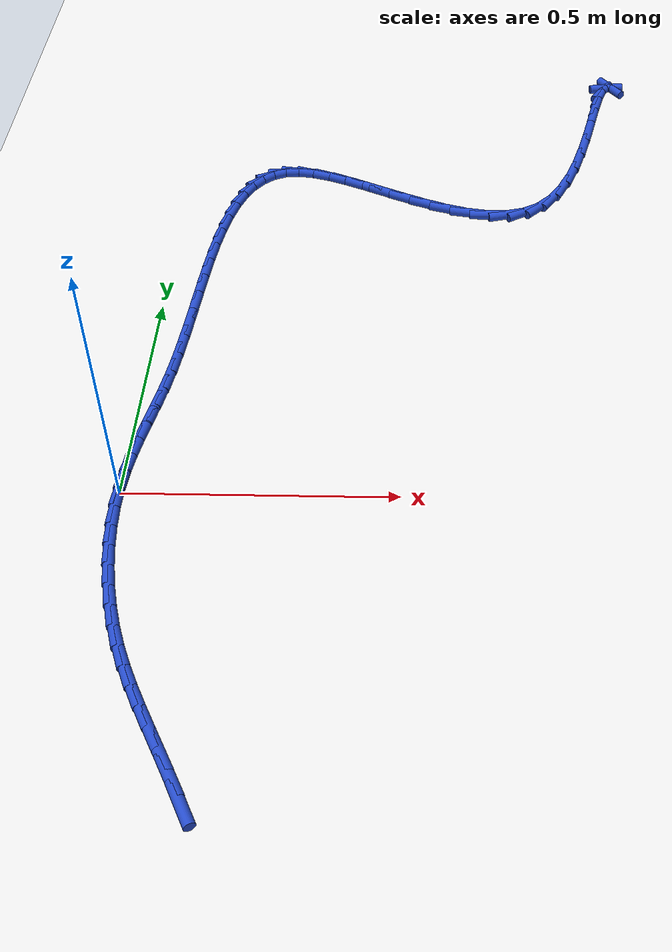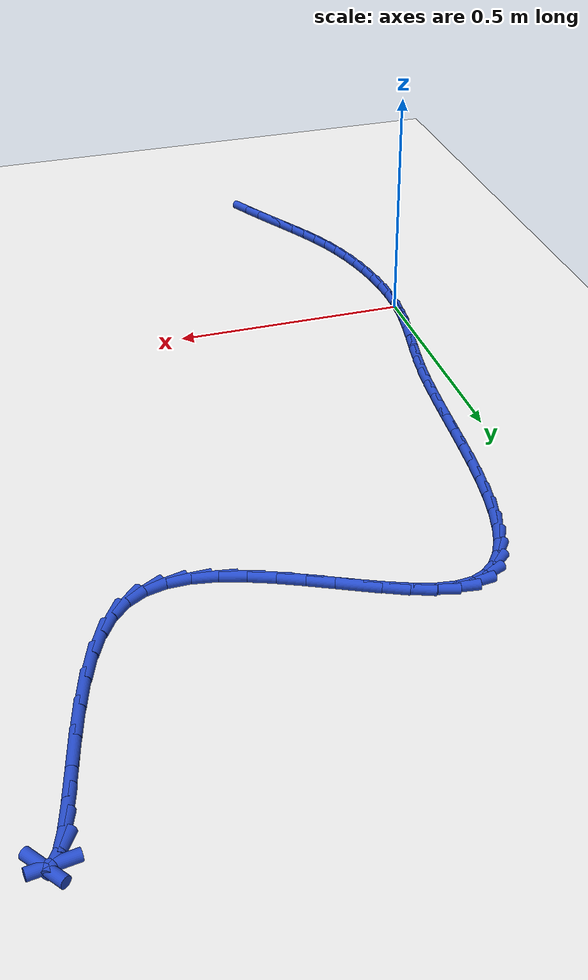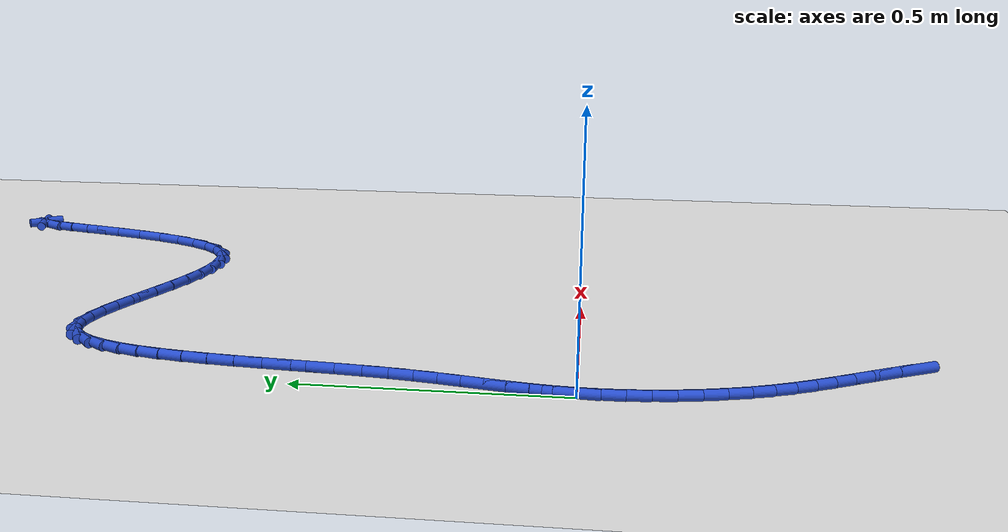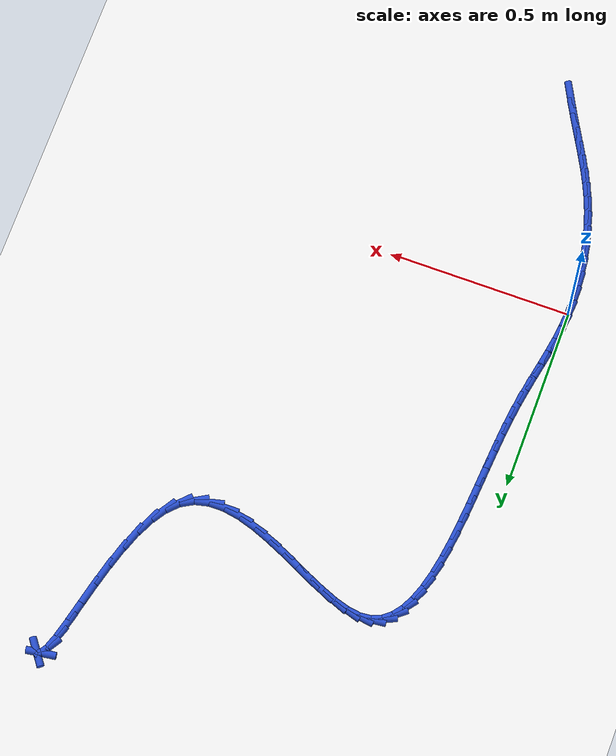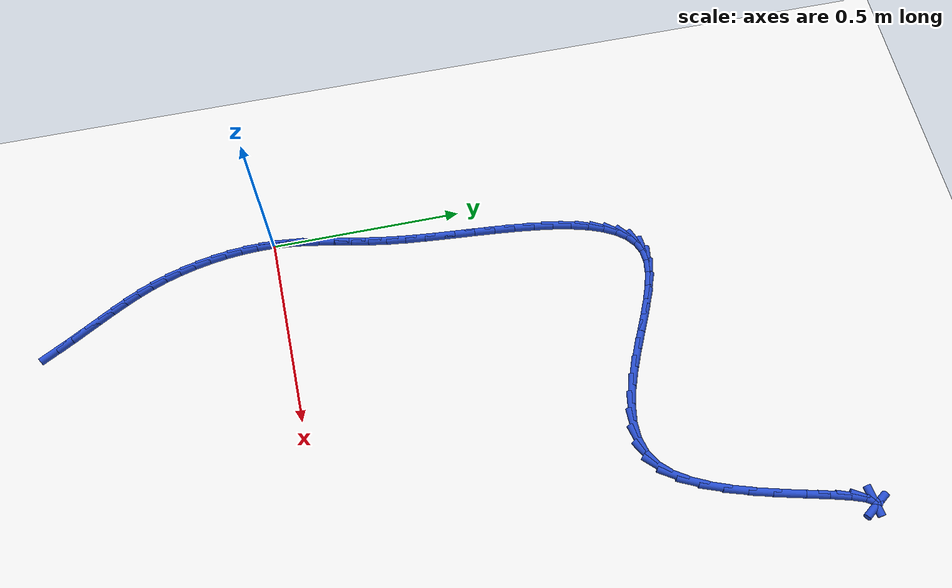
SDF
<sdf version="1.6">
 <world name="default">
  <model name="ground_plane">
   <static>1</static>
   <link name="link">
    <collision name="collision">
     <geometry><plane><normal>0 0 1</normal><size>100 100</size></plane></geometry>
     <surface><friction><ode><mu>100</mu><mu2>50</mu2></ode></friction></surface>
    </collision>
    <visual name="visual">
     <cast_shadows>0</cast_shadows>
     <geometry><plane><normal>0 0 1</normal><size>100 100</size></plane></geometry>
     <material>
      <script><uri>file://media/materials/scripts/gazebo.material</uri><name>Gazebo/WhiteGlow</name></script>
     </material>
    </visual>
   </link>
  </model>
  <model name="line">
   <link name="link_0">
    <pose>-3.469446951953614e-17 -1.3877787807814457e-17 0.01 0 1.57 1.4951217058976023</pose>
    <collision name="collision">
     <geometry><cylinder><radius>0.01</radius><length>0.08</length></cylinder></geometry>
    </collision>
    <visual name="visual">
     <material>
      <script><name>Gazebo/Blue</name><uri>file://media/materials/scripts/gazebo.material</uri></script>
     </material>
     <geometry><cylinder><radius>0.01</radius><length>0.08</length></cylinder></geometry>
    </visual>
   </link>
   <link name="link_1">
    <pose>0.003068000607721073 0.04046458219282482 0.01 0 1.57 1.4431502194532113</pose>
    <collision name="collision">
     <geometry><cylinder><radius>0.01</radius><length>0.08</length></cylinder></geometry>
    </collision>
    <visual name="visual">
     <material>
      <script><name>Gazebo/Blue</name><uri>file://media/materials/scripts/gazebo.material</uri></script>
     </material>
     <geometry><cylinder><radius>0.01</radius><length>0.08</length></cylinder></geometry>
    </visual>
   </link>
   <link name="link_2">
    <pose>0.008171197587003923 0.080226472073507 0.01 0 1.57 1.4053528337721921</pose>
    <collision name="collision">
     <geometry><cylinder><radius>0.01</radius><length>0.08</length></cylinder></geometry>
    </collision>
    <visual name="visual">
     <material>
      <script><name>Gazebo/Blue</name><uri>file://media/materials/scripts/gazebo.material</uri></script>
     </material>
     <geometry><cylinder><radius>0.01</radius><length>0.08</length></cylinder></geometry>
    </visual>
   </link>
   <link name="link_3">
    <pose>0.014789591132992141 0.1198647662148879 0.01 0 1.57 1.383136226669687</pose>
    <collision name="collision">
     <geometry><cylinder><radius>0.01</radius><length>0.08</length></cylinder></geometry>
    </collision>
    <visual name="visual">
     <material>
      <script><name>Gazebo/Blue</name><uri>file://media/materials/scripts/gazebo.material</uri></script>
     </material>
     <geometry><cylinder><radius>0.01</radius><length>0.08</length></cylinder></geometry>
    </visual>
   </link>
   <link name="link_4">
    <pose>0.022403181440829364 0.15995856118980886 0.01 0 1.57 1.3766031780159855</pose>
    <collision name="collision">
     <geometry><cylinder><radius>0.01</radius><length>0.08</length></cylinder></geometry>
    </collision>
    <visual name="visual">
     <material>
      <script><name>Gazebo/Blue</name><uri>file://media/materials/scripts/gazebo.material</uri></script>
     </material>
     <geometry><cylinder><radius>0.01</radius><length>0.08</length></cylinder></geometry>
    </visual>
   </link>
   <link name="link_5">
    <pose>0.030491968705659216 0.20108695357111123 0.01 0 1.57 1.384773958833869</pose>
    <collision name="collision">
     <geometry><cylinder><radius>0.01</radius><length>0.08</length></cylinder></geometry>
    </collision>
    <visual name="visual">
     <material>
      <script><name>Gazebo/Blue</name><uri>file://media/materials/scripts/gazebo.material</uri></script>
     </material>
     <geometry><cylinder><radius>0.01</radius><length>0.08</length></cylinder></geometry>
    </visual>
   </link>
   <link name="link_6">
    <pose>0.038535953122625345 0.24382903993163638 0.01 0 1.57 1.4058634156009262</pose>
    <collision name="collision">
     <geometry><cylinder><radius>0.01</radius><length>0.08</length></cylinder></geometry>
    </collision>
    <visual name="visual">
     <material>
      <script><name>Gazebo/Blue</name><uri>file://media/materials/scripts/gazebo.material</uri></script>
     </material>
     <geometry><cylinder><radius>0.01</radius><length>0.08</length></cylinder></geometry>
    </visual>
   </link>
   <link name="link_7">
    <pose>0.04601513488687137 0.2887639168442257 0.01 0 1.57 1.4368984109076222</pose>
    <collision name="collision">
     <geometry><cylinder><radius>0.01</radius><length>0.08</length></cylinder></geometry>
    </collision>
    <visual name="visual">
     <material>
      <script><name>Gazebo/Blue</name><uri>file://media/materials/scripts/gazebo.material</uri></script>
     </material>
     <geometry><cylinder><radius>0.01</radius><length>0.08</length></cylinder></geometry>
    </visual>
   </link>
   <link name="link_8">
    <pose>0.05243608313809826 0.33643104656350636 0.01 0 1.57 1.4652924382436097</pose>
    <collision name="collision">
     <geometry><cylinder><radius>0.01</radius><length>0.08</length></cylinder></geometry>
    </collision>
    <visual name="visual">
     <material>
      <script><name>Gazebo/Blue</name><uri>file://media/materials/scripts/gazebo.material</uri></script>
     </material>
     <geometry><cylinder><radius>0.01</radius><length>0.08</length></cylinder></geometry>
    </visual>
   </link>
   <link name="link_9">
    <pose>0.05775873869656523 0.386693572515644 0.01 0 1.57 1.4835040604561711</pose>
    <collision name="collision">
     <geometry><cylinder><radius>0.01</radius><length>0.08</length></cylinder></geometry>
    </collision>
    <visual name="visual">
     <material>
      <script><name>Gazebo/Blue</name><uri>file://media/materials/scripts/gazebo.material</uri></script>
     </material>
     <geometry><cylinder><radius>0.01</radius><length>0.08</length></cylinder></geometry>
    </visual>
   </link>
   <link name="link_10">
    <pose>0.06232300132376176 0.4388478330152007 0.01 0 1.57 1.4929879269007387</pose>
    <collision name="collision">
     <geometry><cylinder><radius>0.01</radius><length>0.08</length></cylinder></geometry>
    </collision>
    <visual name="visual">
     <material>
      <script><name>Gazebo/Blue</name><uri>file://media/materials/scripts/gazebo.material</uri></script>
     </material>
     <geometry><cylinder><radius>0.01</radius><length>0.08</length></cylinder></geometry>
    </visual>
   </link>
   <link name="link_11">
    <pose>0.06648051340331826 0.49217264927809773 0.01 0 1.57 1.494654360328666</pose>
    <collision name="collision">
     <geometry><cylinder><radius>0.01</radius><length>0.08</length></cylinder></geometry>
    </collision>
    <visual name="visual">
     <material>
      <script><name>Gazebo/Blue</name><uri>file://media/materials/scripts/gazebo.material</uri></script>
     </material>
     <geometry><cylinder><radius>0.01</radius><length>0.08</length></cylinder></geometry>
    </visual>
   </link>
   <link name="link_12">
    <pose>0.07058291731886508 0.545946842520256 0.01 0 1.57 1.4887613804122766</pose>
    <collision name="collision">
     <geometry><cylinder><radius>0.01</radius><length>0.08</length></cylinder></geometry>
    </collision>
    <visual name="visual">
     <material>
      <script><name>Gazebo/Blue</name><uri>file://media/materials/scripts/gazebo.material</uri></script>
     </material>
     <geometry><cylinder><radius>0.01</radius><length>0.08</length></cylinder></geometry>
    </visual>
   </link>
   <link name="link_13">
    <pose>0.0749818554540327 0.5994492339575973 0.01 0 1.57 1.4749724110111586</pose>
    <collision name="collision">
     <geometry><cylinder><radius>0.01</radius><length>0.08</length></cylinder></geometry>
    </collision>
    <visual name="visual">
     <material>
      <script><name>Gazebo/Blue</name><uri>file://media/materials/scripts/gazebo.material</uri></script>
     </material>
     <geometry><cylinder><radius>0.01</radius><length>0.08</length></cylinder></geometry>
    </visual>
   </link>
   <link name="link_14">
    <pose>0.08002897019245148 0.6519586448060424 0.01 0 1.57 1.4523086974725221</pose>
    <collision name="collision">
     <geometry><cylinder><radius>0.01</radius><length>0.08</length></cylinder></geometry>
    </collision>
    <visual name="visual">
     <material>
      <script><name>Gazebo/Blue</name><uri>file://media/materials/scripts/gazebo.material</uri></script>
     </material>
     <geometry><cylinder><radius>0.01</radius><length>0.08</length></cylinder></geometry>
    </visual>
   </link>
   <link name="link_15">
    <pose>0.08607590391775174 0.7027538962815124 0.01 0 1.57 1.4189872636883354</pose>
    <collision name="collision">
     <geometry><cylinder><radius>0.01</radius><length>0.08</length></cylinder></geometry>
    </collision>
    <visual name="visual">
     <material>
      <script><name>Gazebo/Blue</name><uri>file://media/materials/scripts/gazebo.material</uri></script>
     </material>
     <geometry><cylinder><radius>0.01</radius><length>0.08</length></cylinder></geometry>
    </visual>
   </link>
   <link name="link_16">
    <pose>0.09347429901356401 0.7511138095999289 0.01 0 1.57 1.3721073862547013</pose>
    <collision name="collision">
     <geometry><cylinder><radius>0.01</radius><length>0.08</length></cylinder></geometry>
    </collision>
    <visual name="visual">
     <material>
      <script><name>Gazebo/Blue</name><uri>file://media/materials/scripts/gazebo.material</uri></script>
     </material>
     <geometry><cylinder><radius>0.01</radius><length>0.08</length></cylinder></geometry>
    </visual>
   </link>
   <link name="link_17">
    <pose>0.10257579786351859 0.7963172059772129 0.01 0 1.57 1.3071227031823986</pose>
    <collision name="collision">
     <geometry><cylinder><radius>0.01</radius><length>0.08</length></cylinder></geometry>
    </collision>
    <visual name="visual">
     <material>
      <script><name>Gazebo/Blue</name><uri>file://media/materials/scripts/gazebo.material</uri></script>
     </material>
     <geometry><cylinder><radius>0.01</radius><length>0.08</length></cylinder></geometry>
    </visual>
   </link>
   <link name="link_18">
    <pose>0.1137320428512459 0.8376429066292856 0.01 0 1.57 1.2170462354324274</pose>
    <collision name="collision">
     <geometry><cylinder><radius>0.01</radius><length>0.08</length></cylinder></geometry>
    </collision>
    <visual name="visual">
     <material>
      <script><name>Gazebo/Blue</name><uri>file://media/materials/scripts/gazebo.material</uri></script>
     </material>
     <geometry><cylinder><radius>0.01</radius><length>0.08</length></cylinder></geometry>
    </visual>
   </link>
   <link name="link_19">
    <pose>0.12729467636037634 0.874369732772068 0.01 0 1.57 1.0915491959882178</pose>
    <collision name="collision">
     <geometry><cylinder><radius>0.01</radius><length>0.08</length></cylinder></geometry>
    </collision>
    <visual name="visual">
     <material>
      <script><name>Gazebo/Blue</name><uri>file://media/materials/scripts/gazebo.material</uri></script>
     </material>
     <geometry><cylinder><radius>0.01</radius><length>0.08</length></cylinder></geometry>
    </visual>
   </link>
   <link name="link_20">
    <pose>0.14361534077454038 0.9057765056214819 0.01 0 1.57 0.917125326420871</pose>
    <collision name="collision">
     <geometry><cylinder><radius>0.01</radius><length>0.08</length></cylinder></geometry>
    </collision>
    <visual name="visual">
     <material>
      <script><name>Gazebo/Blue</name><uri>file://media/materials/scripts/gazebo.material</uri></script>
     </material>
     <geometry><cylinder><radius>0.01</radius><length>0.08</length></cylinder></geometry>
    </visual>
   </link>
   <link name="link_21">
    <pose>0.16304567847736823 0.9311420463934474 0.01 0 1.57 0.6824128942961104</pose>
    <collision name="collision">
     <geometry><cylinder><radius>0.01</radius><length>0.08</length></cylinder></geometry>
    </collision>
    <visual name="visual">
     <material>
      <script><name>Gazebo/Blue</name><uri>file://media/materials/scripts/gazebo.material</uri></script>
     </material>
     <geometry><cylinder><radius>0.01</radius><length>0.08</length></cylinder></geometry>
    </visual>
   </link>
   <link name="link_22">
    <pose>0.1859373318524905 0.9497451763038873 0.01 0 1.57 0.39455558384039596</pose>
    <collision name="collision">
     <geometry><cylinder><radius>0.01</radius><length>0.08</length></cylinder></geometry>
    </collision>
    <visual name="visual">
     <material>
      <script><name>Gazebo/Blue</name><uri>file://media/materials/scripts/gazebo.material</uri></script>
     </material>
     <geometry><cylinder><radius>0.01</radius><length>0.08</length></cylinder></geometry>
    </visual>
   </link>
   <link name="link_23">
    <pose>0.2126419432835375 0.9608647165687213 0.01 0 1.57 0.09520336615453237</pose>
    <collision name="collision">
     <geometry><cylinder><radius>0.01</radius><length>0.08</length></cylinder></geometry>
    </collision>
    <visual name="visual">
     <material>
      <script><name>Gazebo/Blue</name><uri>file://media/materials/scripts/gazebo.material</uri></script>
     </material>
     <geometry><cylinder><radius>0.01</radius><length>0.08</length></cylinder></geometry>
    </visual>
   </link>
   <link name="link_24">
    <pose>0.24349739040757096 0.9638111662760462 0.01 0 1.57 -0.14008450777462744</pose>
    <collision name="collision">
     <geometry><cylinder><radius>0.01</radius><length>0.08</length></cylinder></geometry>
    </collision>
    <visual name="visual">
     <material>
      <script><name>Gazebo/Blue</name><uri>file://media/materials/scripts/gazebo.material</uri></script>
     </material>
     <geometry><cylinder><radius>0.01</radius><length>0.08</length></cylinder></geometry>
    </visual>
   </link>
   <link name="link_25">
    <pose>0.27840999056388943 0.9588882074890405 0.01 0 1.57 -0.2869290451556819</pose>
    <collision name="collision">
     <geometry><cylinder><radius>0.01</radius><length>0.08</length></cylinder></geometry>
    </collision>
    <visual name="visual">
     <material>
      <script><name>Gazebo/Blue</name><uri>file://media/materials/scripts/gazebo.material</uri></script>
     </material>
     <geometry><cylinder><radius>0.01</radius><length>0.08</length></cylinder></geometry>
    </visual>
   </link>
   <link name="link_26">
    <pose>0.3167789259476304 0.9475666314647947 0.01 0 1.57 -0.37430686810902347</pose>
    <collision name="collision">
     <geometry><cylinder><radius>0.01</radius><length>0.08</length></cylinder></geometry>
    </collision>
    <visual name="visual">
     <material>
      <script><name>Gazebo/Blue</name><uri>file://media/materials/scripts/gazebo.material</uri></script>
     </material>
     <geometry><cylinder><radius>0.01</radius><length>0.08</length></cylinder></geometry>
    </visual>
   </link>
   <link name="link_27">
    <pose>0.35797437554632305 0.9313839767774466 0.01 0 1.57 -0.4224653980475397</pose>
    <collision name="collision">
     <geometry><cylinder><radius>0.01</radius><length>0.08</length></cylinder></geometry>
    </collision>
    <visual name="visual">
     <material>
      <script><name>Gazebo/Blue</name><uri>file://media/materials/scripts/gazebo.material</uri></script>
     </material>
     <geometry><cylinder><radius>0.01</radius><length>0.08</length></cylinder></geometry>
    </visual>
   </link>
   <link name="link_28">
    <pose>0.4013665183474964 0.9118777820011319 0.01 0 1.57 -0.4422982987916948</pose>
    <collision name="collision">
     <geometry><cylinder><radius>0.01</radius><length>0.08</length></cylinder></geometry>
    </collision>
    <visual name="visual">
     <material>
      <script><name>Gazebo/Blue</name><uri>file://media/materials/scripts/gazebo.material</uri></script>
     </material>
     <geometry><cylinder><radius>0.01</radius><length>0.08</length></cylinder></geometry>
    </visual>
   </link>
   <link name="link_29">
    <pose>0.4463255333386797 0.8905855857099881 0.01 0 1.57 -0.43881658580921684</pose>
    <collision name="collision">
     <geometry><cylinder><radius>0.01</radius><length>0.08</length></cylinder></geometry>
    </collision>
    <visual name="visual">
     <material>
      <script><name>Gazebo/Blue</name><uri>file://media/materials/scripts/gazebo.material</uri></script>
     </material>
     <geometry><cylinder><radius>0.01</radius><length>0.08</length></cylinder></geometry>
    </visual>
   </link>
   <link name="link_30">
    <pose>0.4922215995074023 0.8690449264781515 0.01 0 1.57 -0.4130940439720531</pose>
    <collision name="collision">
     <geometry><cylinder><radius>0.01</radius><length>0.08</length></cylinder></geometry>
    </collision>
    <visual name="visual">
     <material>
      <script><name>Gazebo/Blue</name><uri>file://media/materials/scripts/gazebo.material</uri></script>
     </material>
     <geometry><cylinder><radius>0.01</radius><length>0.08</length></cylinder></geometry>
    </visual>
   </link>
   <link name="link_31">
    <pose>0.5384248958411935 0.8487933428797588 0.01 0 1.57 -0.3629622806388114</pose>
    <collision name="collision">
     <geometry><cylinder><radius>0.01</radius><length>0.08</length></cylinder></geometry>
    </collision>
    <visual name="visual">
     <material>
      <script><name>Gazebo/Blue</name><uri>file://media/materials/scripts/gazebo.material</uri></script>
     </material>
     <geometry><cylinder><radius>0.01</radius><length>0.08</length></cylinder></geometry>
    </visual>
   </link>
   <link name="link_32">
    <pose>0.5843056013275824 0.8313683734889473 0.01 0 1.57 -0.28290631552987117</pose>
    <collision name="collision">
     <geometry><cylinder><radius>0.01</radius><length>0.08</length></cylinder></geometry>
    </collision>
    <visual name="visual">
     <material>
      <script><name>Gazebo/Blue</name><uri>file://media/materials/scripts/gazebo.material</uri></script>
     </material>
     <geometry><cylinder><radius>0.01</radius><length>0.08</length></cylinder></geometry>
    </visual>
   </link>
   <link name="link_33">
    <pose>0.6292338949540979 0.8183075568798531 0.01 0 1.57 -0.16368439228024606</pose>
    <collision name="collision">
     <geometry><cylinder><radius>0.01</radius><length>0.08</length></cylinder></geometry>
    </collision>
    <visual name="visual">
     <material>
      <script><name>Gazebo/Blue</name><uri>file://media/materials/scripts/gazebo.material</uri></script>
     </material>
     <geometry><cylinder><radius>0.01</radius><length>0.08</length></cylinder></geometry>
    </visual>
   </link>
   <link name="link_34">
    <pose>0.6725799557082695 0.8111484316266135 0.01 0 1.57 0.006809459342512383</pose>
    <collision name="collision">
     <geometry><cylinder><radius>0.01</radius><length>0.08</length></cylinder></geometry>
    </collision>
    <visual name="visual">
     <material>
      <script><name>Gazebo/Blue</name><uri>file://media/materials/scripts/gazebo.material</uri></script>
     </material>
     <geometry><cylinder><radius>0.01</radius><length>0.08</length></cylinder></geometry>
    </visual>
   </link>
   <link name="link_35">
    <pose>0.7137139625776263 0.8114285363033651 0.01 0 1.57 0.23719285076958105</pose>
    <collision name="collision">
     <geometry><cylinder><radius>0.01</radius><length>0.08</length></cylinder></geometry>
    </collision>
    <visual name="visual">
     <material>
      <script><name>Gazebo/Blue</name><uri>file://media/materials/scripts/gazebo.material</uri></script>
     </material>
     <geometry><cylinder><radius>0.01</radius><length>0.08</length></cylinder></geometry>
    </visual>
   </link>
   <link name="link_36">
    <pose>0.7520060945496978 0.8206854094842446 0.01 0 1.57 0.516409422108368</pose>
    <collision name="collision">
     <geometry><cylinder><radius>0.01</radius><length>0.08</length></cylinder></geometry>
    </collision>
    <visual name="visual">
     <material>
      <script><name>Gazebo/Blue</name><uri>file://media/materials/scripts/gazebo.material</uri></script>
     </material>
     <geometry><cylinder><radius>0.01</radius><length>0.08</length></cylinder></geometry>
    </visual>
   </link>
   <link name="link_37">
    <pose>0.7868265306120127 0.8404565897433887 0.01 0 1.57 0.7985524834558605</pose>
    <collision name="collision">
     <geometry><cylinder><radius>0.01</radius><length>0.08</length></cylinder></geometry>
    </collision>
    <visual name="visual">
     <material>
      <script><name>Gazebo/Blue</name><uri>file://media/materials/scripts/gazebo.material</uri></script>
     </material>
     <geometry><cylinder><radius>0.01</radius><length>0.08</length></cylinder></geometry>
    </visual>
   </link>
   <link name="link_38">
    <pose>0.8176031347495035 0.8720537253443836 0.01 0 1.57 1.0059609943322232</pose>
    <collision name="collision">
     <geometry><cylinder><radius>0.01</radius><length>0.08</length></cylinder></geometry>
    </collision>
    <visual name="visual">
     <material>
      <script><name>Gazebo/Blue</name><uri>file://media/materials/scripts/gazebo.material</uri></script>
     </material>
     <geometry><cylinder><radius>0.01</radius><length>0.08</length></cylinder></geometry>
    </visual>
   </link>
   <link name="link_39">
    <pose>0.8443922377049559 0.9143274338236977 0.01 0 1.57 1.1378254809079609</pose>
    <collision name="collision">
     <geometry><cylinder><radius>0.01</radius><length>0.08</length></cylinder></geometry>
    </collision>
    <visual name="visual">
     <material>
      <script><name>Gazebo/Blue</name><uri>file://media/materials/scripts/gazebo.material</uri></script>
     </material>
     <geometry><cylinder><radius>0.01</radius><length>0.08</length></cylinder></geometry>
    </visual>
   </link>
   <link name="link_40">
    <pose>0.8676364884619845 0.9646155382075973 0.01 0 1.57 1.2232509794631061</pose>
    <collision name="collision">
     <geometry><cylinder><radius>0.01</radius><length>0.08</length></cylinder></geometry>
    </collision>
    <visual name="visual">
     <material>
      <script><name>Gazebo/Blue</name><uri>file://media/materials/scripts/gazebo.material</uri></script>
     </material>
     <geometry><cylinder><radius>0.01</radius><length>0.08</length></cylinder></geometry>
    </visual>
   </link>
   <link name="link_41">
    <pose>0.8877841667137211 1.0202338120679193 0.01 0 1.57 1.279022746159319</pose>
    <collision name="collision">
     <geometry><cylinder><radius>0.01</radius><length>0.08</length></cylinder></geometry>
    </collision>
    <visual name="visual">
     <material>
      <script><name>Gazebo/Blue</name><uri>file://media/materials/scripts/gazebo.material</uri></script>
     </material>
     <geometry><cylinder><radius>0.01</radius><length>0.08</length></cylinder></geometry>
    </visual>
   </link>
   <link name="link_42">
    <pose>0.9052835521532973 1.0784980289764992 0.01 0 1.57 1.3138459610086088</pose>
    <collision name="collision">
     <geometry><cylinder><radius>0.01</radius><length>0.08</length></cylinder></geometry>
    </collision>
    <visual name="visual">
     <material>
      <script><name>Gazebo/Blue</name><uri>file://media/materials/scripts/gazebo.material</uri></script>
     </material>
     <geometry><cylinder><radius>0.01</radius><length>0.08</length></cylinder></geometry>
    </visual>
   </link>
   <link name="link_43">
    <pose>0.9205829244738453 1.1367239625051744 0.01 0 1.57 1.3313909660755805</pose>
    <collision name="collision">
     <geometry><cylinder><radius>0.01</radius><length>0.08</length></cylinder></geometry>
    </collision>
    <visual name="visual">
     <material>
      <script><name>Gazebo/Blue</name><uri>file://media/materials/scripts/gazebo.material</uri></script>
     </material>
     <geometry><cylinder><radius>0.01</radius><length>0.08</length></cylinder></geometry>
    </visual>
   </link>
   <link name="link_44">
    <pose>0.9341305633684974 1.1922273862257815 0.01 0 1.57 1.3310847076183943</pose>
    <collision name="collision">
     <geometry><cylinder><radius>0.01</radius><length>0.08</length></cylinder></geometry>
    </collision>
    <visual name="visual">
     <material>
      <script><name>Gazebo/Blue</name><uri>file://media/materials/scripts/gazebo.material</uri></script>
     </material>
     <geometry><cylinder><radius>0.01</radius><length>0.08</length></cylinder></geometry>
    </visual>
   </link>
   <link name="link_45">
    <pose>0.9463747485303853 1.2423240737101562 0.01 0 1.57 1.3060315951407147</pose>
    <collision name="collision">
     <geometry><cylinder><radius>0.01</radius><length>0.08</length></cylinder></geometry>
    </collision>
    <visual name="visual">
     <material>
      <script><name>Gazebo/Blue</name><uri>file://media/materials/scripts/gazebo.material</uri></script>
     </material>
     <geometry><cylinder><radius>0.01</radius><length>0.08</length></cylinder></geometry>
    </visual>
   </link>
   <link name="link_46">
    <pose>0.9577637596526409 1.2843297985301356 0.01 0 1.57 1.2326552124681993</pose>
    <collision name="collision">
     <geometry><cylinder><radius>0.01</radius><length>0.08</length></cylinder></geometry>
    </collision>
    <visual name="visual">
     <material>
      <script><name>Gazebo/Blue</name><uri>file://media/materials/scripts/gazebo.material</uri></script>
     </material>
     <geometry><cylinder><radius>0.01</radius><length>0.08</length></cylinder></geometry>
    </visual>
   </link>
   <link name="link_47">
    <pose>0.9687458764283959 1.3155603342575553 0.01 0 1.57 1.0155808294025885</pose>
    <collision name="collision">
     <geometry><cylinder><radius>0.01</radius><length>0.08</length></cylinder></geometry>
    </collision>
    <visual name="visual">
     <material>
      <script><name>Gazebo/Blue</name><uri>file://media/materials/scripts/gazebo.material</uri></script>
     </material>
     <geometry><cylinder><radius>0.01</radius><length>0.08</length></cylinder></geometry>
    </visual>
   </link>
   <link name="link_48">
    <pose>0.979769378550783 1.3333314544642525 0.01 0 1.57 0.14042758504457697</pose>
    <collision name="collision">
     <geometry><cylinder><radius>0.01</radius><length>0.08</length></cylinder></geometry>
    </collision>
    <visual name="visual">
     <material>
      <script><name>Gazebo/Blue</name><uri>file://media/materials/scripts/gazebo.material</uri></script>
     </material>
     <geometry><cylinder><radius>0.01</radius><length>0.08</length></cylinder></geometry>
    </visual>
   </link>
   <link name="link_49">
    <pose>0.9912825457129333 1.334958932722063 0.01 0 1.57 -0.9414782304646425</pose>
    <collision name="collision">
     <geometry><cylinder><radius>0.01</radius><length>0.08</length></cylinder></geometry>
    </collision>
    <visual name="visual">
     <material>
      <script><name>Gazebo/Blue</name><uri>file://media/materials/scripts/gazebo.material</uri></script>
     </material>
     <geometry><cylinder><radius>0.01</radius><length>0.08</length></cylinder></geometry>
    </visual>
   </link>
   <link name="link_185">
    <pose>0.19408765089556346 -0.5938313063949747 0.01 0 1.57 -1.0872024671869496</pose>
    <collision name="collision">
     <geometry><cylinder><radius>0.01</radius><length>0.08</length></cylinder></geometry>
    </collision>
    <visual name="visual">
     <material>
      <script><name>Gazebo/Blue</name><uri>file://media/materials/scripts/gazebo.material</uri></script>
     </material>
     <geometry><cylinder><radius>0.01</radius><length>0.08</length></cylinder></geometry>
    </visual>
   </link>
   <link name="link_186">
    <pose>0.17143913168631114 -0.5507066591635719 0.01 0 1.57 -1.0704050529797118</pose>
    <collision name="collision">
     <geometry><cylinder><radius>0.01</radius><length>0.08</length></cylinder></geometry>
    </collision>
    <visual name="visual">
     <material>
      <script><name>Gazebo/Blue</name><uri>file://media/materials/scripts/gazebo.material</uri></script>
     </material>
     <geometry><cylinder><radius>0.01</radius><length>0.08</length></cylinder></geometry>
    </visual>
   </link>
   <link name="link_187">
    <pose>0.14958521789314094 -0.5107405137890914 0.01 0 1.57 -1.0631967950317147</pose>
    <collision name="collision">
     <geometry><cylinder><radius>0.01</radius><length>0.08</length></cylinder></geometry>
    </collision>
    <visual name="visual">
     <material>
      <script><name>Gazebo/Blue</name><uri>file://media/materials/scripts/gazebo.material</uri></script>
     </material>
     <geometry><cylinder><radius>0.01</radius><length>0.08</length></cylinder></geometry>
    </visual>
   </link>
   <link name="link_188">
    <pose>0.12866692452322548 -0.47313198358990094 0.01 0 1.57 -1.0676810365903229</pose>
    <collision name="collision">
     <geometry><cylinder><radius>0.01</radius><length>0.08</length></cylinder></geometry>
    </collision>
    <visual name="visual">
     <material>
      <script><name>Gazebo/Blue</name><uri>file://media/materials/scripts/gazebo.material</uri></script>
     </material>
     <geometry><cylinder><radius>0.01</radius><length>0.08</length></cylinder></geometry>
    </visual>
   </link>
   <link name="link_189">
    <pose>0.10882531352666772 -0.43707956048281565 0.01 0 1.57 -1.0852970087562805</pose>
    <collision name="collision">
     <geometry><cylinder><radius>0.01</radius><length>0.08</length></cylinder></geometry>
    </collision>
    <visual name="visual">
     <material>
      <script><name>Gazebo/Blue</name><uri>file://media/materials/scripts/gazebo.material</uri></script>
     </material>
     <geometry><cylinder><radius>0.01</radius><length>0.08</length></cylinder></geometry>
    </visual>
   </link>
   <link name="link_190">
    <pose>0.0902014468535708 -0.40178173638465076 0.01 0 1.57 -1.1164101977002825</pose>
    <collision name="collision">
     <geometry><cylinder><radius>0.01</radius><length>0.08</length></cylinder></geometry>
    </collision>
    <visual name="visual">
     <material>
      <script><name>Gazebo/Blue</name><uri>file://media/materials/scripts/gazebo.material</uri></script>
     </material>
     <geometry><cylinder><radius>0.01</radius><length>0.08</length></cylinder></geometry>
    </visual>
   </link>
   <link name="link_191">
    <pose>0.07293638645403776 -0.3664370032122215 0.01 0 1.57 -1.1599943872871343</pose>
    <collision name="collision">
     <geometry><cylinder><radius>0.01</radius><length>0.08</length></cylinder></geometry>
    </collision>
    <visual name="visual">
     <material>
      <script><name>Gazebo/Blue</name><uri>file://media/materials/scripts/gazebo.material</uri></script>
     </material>
     <geometry><cylinder><radius>0.01</radius><length>0.08</length></cylinder></geometry>
    </visual>
   </link>
   <link name="link_192">
    <pose>0.05717119427817188 -0.3302438528823437 0.01 0 1.57 -1.2134205499670703</pose>
    <collision name="collision">
     <geometry><cylinder><radius>0.01</radius><length>0.08</length></cylinder></geometry>
    </collision>
    <visual name="visual">
     <material>
      <script><name>Gazebo/Blue</name><uri>file://media/materials/scripts/gazebo.material</uri></script>
     </material>
     <geometry><cylinder><radius>0.01</radius><length>0.08</length></cylinder></geometry>
    </visual>
   </link>
   <link name="link_193">
    <pose>0.04304654396589796 -0.2924177137409361 0.01 0 1.57 -1.2690341631063953</pose>
    <collision name="collision">
     <geometry><cylinder><radius>0.01</radius><length>0.08</length></cylinder></geometry>
    </collision>
    <visual name="visual">
     <material>
      <script><name>Gazebo/Blue</name><uri>file://media/materials/scripts/gazebo.material</uri></script>
     </material>
     <geometry><cylinder><radius>0.01</radius><length>0.08</length></cylinder></geometry>
    </visual>
   </link>
   <link name="link_194">
    <pose>0.030690544508277615 -0.25272203037712127 0.01 0 1.57 -1.3215390442968236</pose>
    <collision name="collision">
     <geometry><cylinder><radius>0.01</radius><length>0.08</length></cylinder></geometry>
    </collision>
    <visual name="visual">
     <material>
      <script><name>Gazebo/Blue</name><uri>file://media/materials/scripts/gazebo.material</uri></script>
     </material>
     <geometry><cylinder><radius>0.01</radius><length>0.08</length></cylinder></geometry>
    </visual>
   </link>
   <link name="link_195">
    <pose>0.020216312602855422 -0.21157414709968186 0.01 0 1.57 -1.372229644580164</pose>
    <collision name="collision">
     <geometry><cylinder><radius>0.01</radius><length>0.08</length></cylinder></geometry>
    </collision>
    <visual name="visual">
     <material>
      <script><name>Gazebo/Blue</name><uri>file://media/materials/scripts/gazebo.material</uri></script>
     </material>
     <geometry><cylinder><radius>0.01</radius><length>0.08</length></cylinder></geometry>
    </visual>
   </link>
   <link name="link_196">
    <pose>0.011736086353668053 -0.169429728708386 0.01 0 1.57 -1.4225665509923686</pose>
    <collision name="collision">
     <geometry><cylinder><radius>0.01</radius><length>0.08</length></cylinder></geometry>
    </collision>
    <visual name="visual">
     <material>
      <script><name>Gazebo/Blue</name><uri>file://media/materials/scripts/gazebo.material</uri></script>
     </material>
     <geometry><cylinder><radius>0.01</radius><length>0.08</length></cylinder></geometry>
    </visual>
   </link>
   <link name="link_197">
    <pose>0.005362103864752171 -0.12674444000300183 0.01 0 1.57 -1.4739422056744533</pose>
    <collision name="collision">
     <geometry><cylinder><radius>0.01</radius><length>0.08</length></cylinder></geometry>
    </collision>
    <visual name="visual">
     <material>
      <script><name>Gazebo/Blue</name><uri>file://media/materials/scripts/gazebo.material</uri></script>
     </material>
     <geometry><cylinder><radius>0.01</radius><length>0.08</length></cylinder></geometry>
    </visual>
   </link>
   <link name="link_198">
    <pose>0.001206603240144424 -0.08397394578329742 0.01 0 1.57 -1.5277856243925867</pose>
    <collision name="collision">
     <geometry><cylinder><radius>0.01</radius><length>0.08</length></cylinder></geometry>
    </collision>
    <visual name="visual">
     <material>
      <script><name>Gazebo/Blue</name><uri>file://media/materials/scripts/gazebo.material</uri></script>
     </material>
     <geometry><cylinder><radius>0.01</radius><length>0.08</length></cylinder></geometry>
    </visual>
   </link>
   <link name="link_199">
    <pose>-0.0006181774161185295 -0.041573910849040885 0.01 0 1.57 1.5559280632539845</pose>
    <collision name="collision">
     <geometry><cylinder><radius>0.01</radius><length>0.08</length></cylinder></geometry>
    </collision>
    <visual name="visual">
     <material>
      <script><name>Gazebo/Blue</name><uri>file://media/materials/scripts/gazebo.material</uri></script>
     </material>
     <geometry><cylinder><radius>0.01</radius><length>0.08</length></cylinder></geometry>
    </visual>
   </link>
   <link name="link_200">
    <pose>-3.122502256758253e-17 -2.706168622523819e-16 0.01 0 1.57 1.4921994133782361</pose>
    <collision name="collision">
     <geometry><cylinder><radius>0.01</radius><length>0.08</length></cylinder></geometry>
    </collision>
    <visual name="visual">
     <material>
      <script><name>Gazebo/Blue</name><uri>file://media/materials/scripts/gazebo.material</uri></script>
     </material>
     <geometry><cylinder><radius>0.01</radius><length>0.08</length></cylinder></geometry>
    </visual>
   </link>
   <link name="link_201">
    <pose>0.003173373592536669 0.040292121964057216 0.01 0 1.57 1.4921994133782355</pose>
    <collision name="collision">
     <geometry><cylinder><radius>0.01</radius><length>0.08</length></cylinder></geometry>
    </collision>
    <visual name="visual">
     <material>
      <script><name>Gazebo/Blue</name><uri>file://media/materials/scripts/gazebo.material</uri></script>
     </material>
     <geometry><cylinder><radius>0.01</radius><length>0.08</length></cylinder></geometry>
    </visual>
   </link>
  </model>
 </world>
</sdf>
